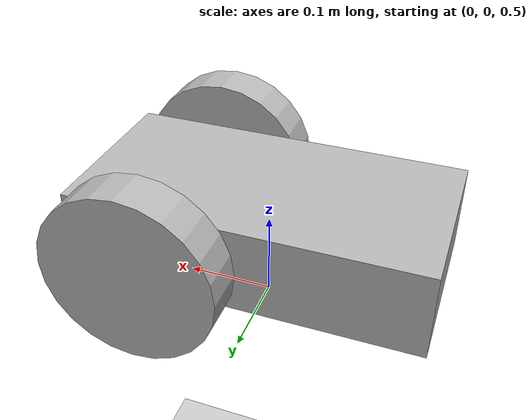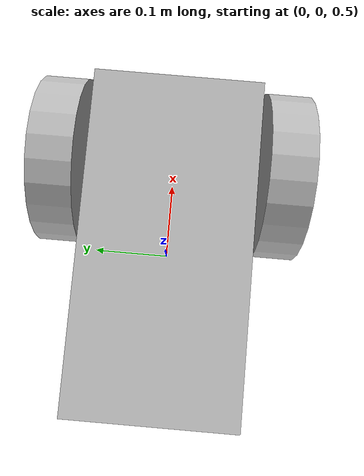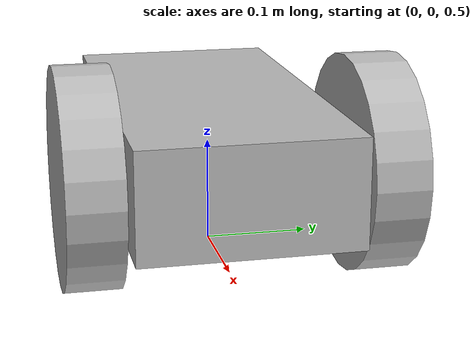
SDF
<?xml version="1.0" ?>
<sdf version="1.7">
    <world name="default">
        <!-- A global light source -->
        <include>
            <uri>model://sun</uri>
        </include>
        <!-- A ground plane -->
        <include>
            <uri>model://ground_plane</uri>
        </include>

        <!-- A simple robot included from the model directory -->
        <include>
            <uri>model://simple_robot</uri>
            <pose>0 0 0.5 0 0 0</pose>
        </include>
    </world>
</sdf>

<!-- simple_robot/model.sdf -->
<sdf version="1.7">
  <model name="simple_robot">
    <static>false</static>
    <link name="chassis">
      <pose>0 0 0.1 0 0 0</pose>
      <collision name="collision">
        <geometry>
          <box>
            <size>0.4 0.2 0.1</size>
          </box>
        </geometry>
      </collision>
      <visual name="visual">
        <geometry>
          <box>
            <size>0.4 0.2 0.1</size>
          </box>
        </geometry>
      </visual>
    </link>

    <link name="left_wheel">
      <pose>0.1 0.13 0.1 -1.5707 0 0</pose>
      <collision name="collision">
        <geometry>
          <cylinder>
            <radius>0.1</radius>
            <length>0.05</length>
          </cylinder>
        </geometry>
      </collision>
      <visual name="visual">
        <geometry>
          <cylinder>
            <radius>0.1</radius>
            <length>0.05</length>
          </cylinder>
        </geometry>
      </visual>
    </link>

    <link name="right_wheel">
      <pose>0.1 -0.13 0.1 -1.5707 0 0</pose>
      <collision name="collision">
        <geometry>
          <cylinder>
            <radius>0.1</radius>
            <length>0.05</length>
          </cylinder>
        </geometry>
      </collision>
      <visual name="visual">
        <geometry>
          <cylinder>
            <radius>0.1</radius>
            <length>0.05</length>
          </cylinder>
        </geometry>
      </visual>
    </link>

    <joint name="left_wheel_hinge" type="revolute">
      <parent>chassis</parent>
      <child>left_wheel</child>
      <axis>
        <xyz>0 0 1</xyz>
      </axis>
    </joint>

    <joint name="right_wheel_hinge" type="revolute">
      <parent>chassis</parent>
      <child>right_wheel</child>
      <axis>
        <xyz>0 0 1</xyz>
      </axis>
    </joint>
  </model>
</sdf>
